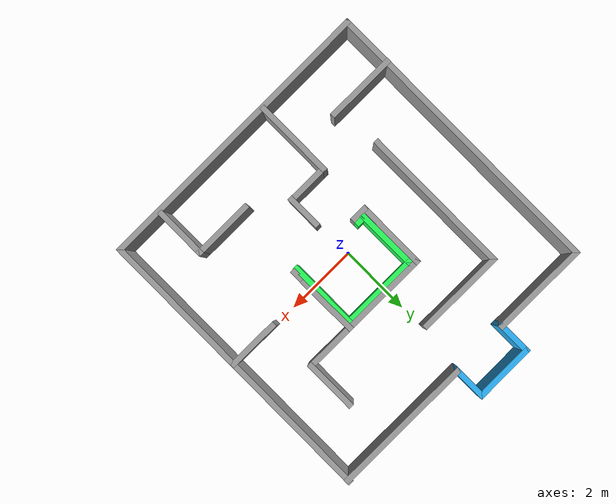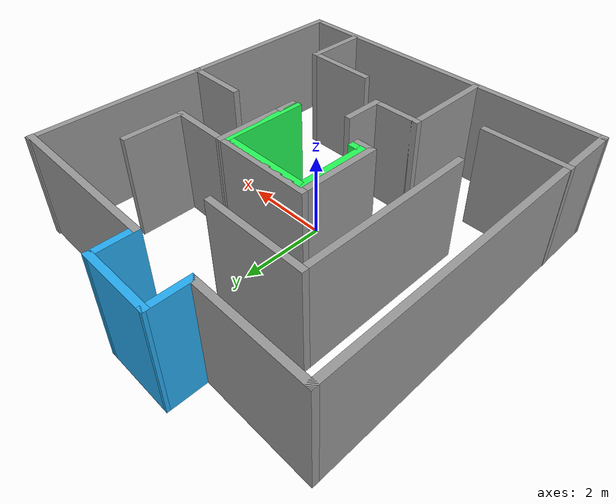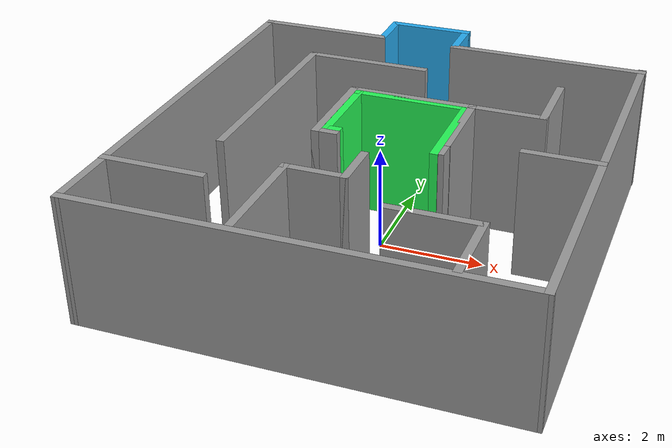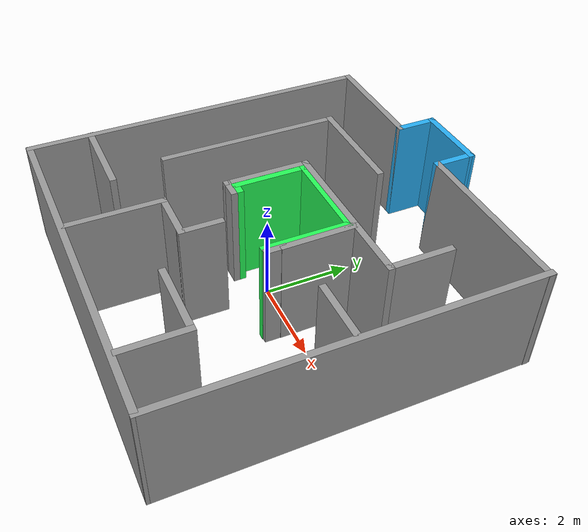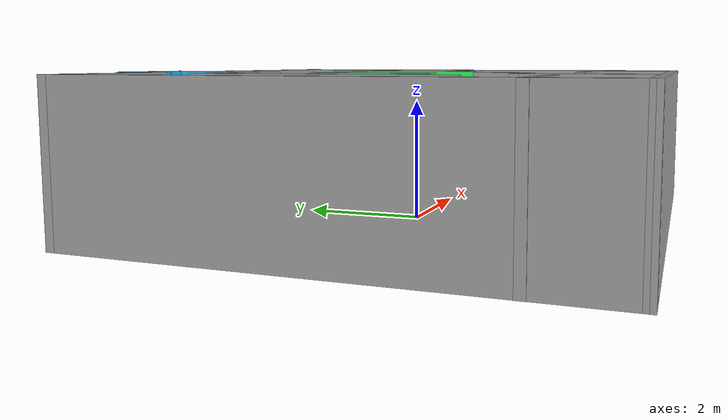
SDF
<?xml version='1.0'?>
<sdf version='1.7'>
  <model name='Floating_room_1'>
    <pose>-0.007582 0.398053 0 0 -0 0</pose>
    <link name='Wall_10'>
      <collision name='Wall_10_Collision'>
        <geometry>
          <box>
            <size>2.75 0.15 2.5</size>
          </box>
        </geometry>
        <pose>0 0 1.25 0 -0 0</pose>
      </collision>
      <visual name='Wall_10_Visual'>
        <pose>0 0 1.25 0 -0 0</pose>
        <geometry>
          <box>
            <size>2.75 0.15 2.5</size>
          </box>
        </geometry>
        <material>
          <script>
            <uri>file://media/materials/scripts/gazebo.material</uri>
            <name>Gazebo/Grey</name>
          </script>
          <ambient>1 1 1 1</ambient>
        </material>
        <meta>
          <layer>0</layer>
        </meta>
      </visual>
      <pose>-2.70767 3.61829 0 0 -0 0</pose>
    </link>
    <link name='Wall_11'>
      <collision name='Wall_11_Collision'>
        <geometry>
          <box>
            <size>1 0.15 2.5</size>
          </box>
        </geometry>
        <pose>0 0 1.25 0 -0 0</pose>
      </collision>
      <visual name='Wall_11_Visual'>
        <pose>0 0 1.25 0 -0 0</pose>
        <geometry>
          <box>
            <size>1 0.15 2.5</size>
          </box>
        </geometry>
        <material>
          <script>
            <uri>file://media/materials/scripts/gazebo.material</uri>
            <name>Gazebo/Grey</name>
          </script>
          <ambient>0.152941 0.67451 0.945098 1</ambient>
        </material>
        <meta>
          <layer>0</layer>
        </meta>
      </visual>
      <pose>-1.40767 4.04329 0 0 -0 1.5708</pose>
    </link>
    <link name='Wall_14'>
      <collision name='Wall_14_Collision'>
        <geometry>
          <box>
            <size>4 0.15 2.5</size>
          </box>
        </geometry>
        <pose>0 0 1.25 0 -0 0</pose>
      </collision>
      <visual name='Wall_14_Visual'>
        <pose>0 0 1.25 0 -0 0</pose>
        <geometry>
          <box>
            <size>4 0.15 2.5</size>
          </box>
        </geometry>
        <material>
          <script>
            <uri>file://media/materials/scripts/gazebo.material</uri>
            <name>Gazebo/Grey</name>
          </script>
          <ambient>1 1 1 1</ambient>
        </material>
        <meta>
          <layer>0</layer>
        </meta>
      </visual>
      <pose>2.09088 3.63151 0 0 -0 0</pose>
    </link>
    <link name='Wall_16'>
      <collision name='Wall_16_Collision'>
        <geometry>
          <box>
            <size>1.5 0.15 2.5</size>
          </box>
        </geometry>
        <pose>0 0 1.25 0 -0 0</pose>
      </collision>
      <visual name='Wall_16_Visual'>
        <pose>0 0 1.25 0 -0 0</pose>
        <geometry>
          <box>
            <size>1.5 0.15 2.5</size>
          </box>
        </geometry>
        <material>
          <script>
            <uri>file://media/materials/scripts/gazebo.material</uri>
            <name>Gazebo/Grey</name>
          </script>
          <ambient>1 1 1 1</ambient>
        </material>
        <meta>
          <layer>0</layer>
        </meta>
      </visual>
      <pose>2.66533 1.64931 0 0 -0 -1.5708</pose>
    </link>
    <link name='Wall_17'>
      <collision name='Wall_17_Collision'>
        <geometry>
          <box>
            <size>1.5 0.15 2.5</size>
          </box>
        </geometry>
        <pose>0 0 1.25 0 -0 0</pose>
      </collision>
      <visual name='Wall_17_Visual'>
        <pose>0 0 1.25 0 -0 0</pose>
        <geometry>
          <box>
            <size>1.5 0.15 2.5</size>
          </box>
        </geometry>
        <material>
          <script>
            <uri>file://media/materials/scripts/gazebo.material</uri>
            <name>Gazebo/Grey</name>
          </script>
          <ambient>1 1 1 1</ambient>
        </material>
        <meta>
          <layer>0</layer>
        </meta>
      </visual>
      <pose>1.99033 0.97431 0 0 -0 3.14159</pose>
    </link>
    <link name='Wall_18'>
      <collision name='Wall_18_Collision'>
        <geometry>
          <box>
            <size>1.75 0.15 2.5</size>
          </box>
        </geometry>
        <pose>0 0 1.25 0 -0 0</pose>
      </collision>
      <visual name='Wall_18_Visual'>
        <pose>0 0 1.25 0 -0 0</pose>
        <geometry>
          <box>
            <size>1.75 0.15 2.5</size>
          </box>
        </geometry>
        <material>
          <script>
            <uri>file://media/materials/scripts/gazebo.material</uri>
            <name>Gazebo/Grey</name>
          </script>
          <ambient>1 1 1 1</ambient>
        </material>
        <meta>
          <layer>0</layer>
        </meta>
      </visual>
      <pose>1.32289 0.17431 0 0 -0 -1.56134</pose>
    </link>
    <link name='Wall_20'>
      <collision name='Wall_20_Collision'>
        <geometry>
          <box>
            <size>2.5 0.15 2.5</size>
          </box>
        </geometry>
        <pose>0 0 1.25 0 -0 0</pose>
      </collision>
      <visual name='Wall_20_Visual'>
        <pose>0 0 1.25 0 -0 0</pose>
        <geometry>
          <box>
            <size>2.5 0.15 2.5</size>
          </box>
        </geometry>
        <material>
          <script>
            <uri>file://media/materials/scripts/gazebo.material</uri>
            <name>Gazebo/Grey</name>
          </script>
          <ambient>1 1 1 1</ambient>
        </material>
        <meta>
          <layer>0</layer>
        </meta>
      </visual>
      <pose>0.140328 0.97431 0 0 -0 3.14159</pose>
    </link>
    <link name='Wall_21'>
      <collision name='Wall_21_Collision'>
        <geometry>
          <box>
            <size>2 0.15 2.5</size>
          </box>
        </geometry>
        <pose>0 0 1.25 0 -0 0</pose>
      </collision>
      <visual name='Wall_21_Visual'>
        <pose>0 0 1.25 0 -0 0</pose>
        <geometry>
          <box>
            <size>2 0.15 2.5</size>
          </box>
        </geometry>
        <material>
          <script>
            <uri>file://media/materials/scripts/gazebo.material</uri>
            <name>Gazebo/Grey</name>
          </script>
          <ambient>1 1 1 1</ambient>
        </material>
        <meta>
          <layer>0</layer>
        </meta>
      </visual>
      <pose>-1.03467 0.04931 0 0 -0 -1.5708</pose>
    </link>
    <link name='Wall_22'>
      <collision name='Wall_22_Collision'>
        <geometry>
          <box>
            <size>0.5 0.15 2.5</size>
          </box>
        </geometry>
        <pose>0 0 1.25 0 -0 0</pose>
      </collision>
      <visual name='Wall_22_Visual'>
        <pose>0 0 1.25 0 -0 0</pose>
        <geometry>
          <box>
            <size>0.5 0.15 2.5</size>
          </box>
        </geometry>
        <material>
          <script>
            <uri>file://media/materials/scripts/gazebo.material</uri>
            <name>Gazebo/Grey</name>
          </script>
          <ambient>1 1 1 1</ambient>
        </material>
        <meta>
          <layer>0</layer>
        </meta>
      </visual>
      <pose>-0.859672 -0.87569 0 0 -0 0</pose>
    </link>
    <link name='Wall_24'>
      <collision name='Wall_24_Collision'>
        <geometry>
          <box>
            <size>1.5 0.15 2.5</size>
          </box>
        </geometry>
        <pose>0 0 1.25 0 -0 0</pose>
      </collision>
      <visual name='Wall_24_Visual'>
        <pose>0 0 1.25 0 -0 0</pose>
        <geometry>
          <box>
            <size>1.5 0.15 2.5</size>
          </box>
        </geometry>
        <material>
          <script>
            <uri>file://media/materials/scripts/gazebo.material</uri>
            <name>Gazebo/Grey</name>
          </script>
          <ambient>1 1 1 1</ambient>
        </material>
        <meta>
          <layer>0</layer>
        </meta>
      </visual>
      <pose>3.32284 -0.421629 0 0 -0 0</pose>
    </link>
    <link name='Wall_26'>
      <collision name='Wall_26_Collision'>
        <geometry>
          <box>
            <size>1.5 0.15 2.5</size>
          </box>
        </geometry>
        <pose>0 0 1.25 0 -0 0</pose>
      </collision>
      <visual name='Wall_26_Visual'>
        <pose>0 0 1.25 0 -0 0</pose>
        <geometry>
          <box>
            <size>1.5 0.15 2.5</size>
          </box>
        </geometry>
        <material>
          <script>
            <uri>file://media/materials/scripts/gazebo.material</uri>
            <name>Gazebo/Grey</name>
          </script>
          <ambient>1 1 1 1</ambient>
        </material>
        <meta>
          <layer>0</layer>
        </meta>
      </visual>
      <pose>2.64784 -3.66767 0 0 -0 -1.5708</pose>
    </link>
    <link name='Wall_28'>
      <collision name='Wall_28_Collision'>
        <geometry>
          <box>
            <size>1.75 0.15 2.5</size>
          </box>
        </geometry>
        <pose>0 0 1.25 0 -0 0</pose>
      </collision>
      <visual name='Wall_28_Visual'>
        <pose>0 0 1.25 0 -0 0</pose>
        <geometry>
          <box>
            <size>1.75 0.15 2.5</size>
          </box>
        </geometry>
        <material>
          <script>
            <uri>file://media/materials/scripts/gazebo.material</uri>
            <name>Gazebo/Grey</name>
          </script>
          <ambient>1 1 1 1</ambient>
        </material>
        <meta>
          <layer>0</layer>
        </meta>
      </visual>
      <pose>1.84784 -2.99267 0 0 -0 3.14159</pose>
    </link>
    <link name='Wall_31'>
      <collision name='Wall_31_Collision'>
        <geometry>
          <box>
            <size>2.25 0.15 2.5</size>
          </box>
        </geometry>
        <pose>0 0 1.25 0 -0 0</pose>
      </collision>
      <visual name='Wall_31_Visual'>
        <pose>0 0 1.25 0 -0 0</pose>
        <geometry>
          <box>
            <size>2.25 0.15 2.5</size>
          </box>
        </geometry>
        <material>
          <script>
            <uri>file://media/materials/scripts/gazebo.material</uri>
            <name>Gazebo/Grey</name>
          </script>
          <ambient>1 1 1 1</ambient>
        </material>
        <meta>
          <layer>0</layer>
        </meta>
      </visual>
      <pose>-1.00758 -3.35936 0 0 -0 1.5708</pose>
    </link>
    <link name='Wall_35'>
      <collision name='Wall_35_Collision'>
        <geometry>
          <box>
            <size>0.5 0.15 2.5</size>
          </box>
        </geometry>
        <pose>0 0 1.25 0 -0 0</pose>
      </collision>
      <visual name='Wall_35_Visual'>
        <pose>0 0 1.25 0 -0 0</pose>
        <geometry>
          <box>
            <size>0.5 0.15 2.5</size>
          </box>
        </geometry>
        <material>
          <script>
            <uri>file://media/materials/scripts/gazebo.material</uri>
            <name>Gazebo/Grey</name>
          </script>
          <ambient>1 1 1 1</ambient>
        </material>
        <meta>
          <layer>0</layer>
        </meta>
      </visual>
      <pose>1.32289 -0.80069 0 0 -0 -1.5708</pose>
    </link>
    <link name='Wall_38'>
      <collision name='Wall_38_Collision'>
        <geometry>
          <box>
            <size>2.5 0.15 2.5</size>
          </box>
        </geometry>
        <pose>0 0 1.25 0 -0 0</pose>
      </collision>
      <visual name='Wall_38_Visual'>
        <pose>0 0 1.25 0 -0 0</pose>
        <geometry>
          <box>
            <size>2.5 0.15 2.5</size>
          </box>
        </geometry>
        <material>
          <script>
            <uri>file://media/materials/scripts/gazebo.material</uri>
            <name>Gazebo/Grey</name>
          </script>
          <ambient>1 1 1 1</ambient>
        </material>
        <meta>
          <layer>0</layer>
        </meta>
      </visual>
      <pose>-1.25561 2.28933 0 0 -0 3.14159</pose>
    </link>
    <link name='Wall_39'>
      <collision name='Wall_39_Collision'>
        <geometry>
          <box>
            <size>4.25 0.15 2.5</size>
          </box>
        </geometry>
        <pose>0 0 1.25 0 -0 0</pose>
      </collision>
      <visual name='Wall_39_Visual'>
        <pose>0 0 1.25 0 -0 0</pose>
        <geometry>
          <box>
            <size>4.25 0.15 2.5</size>
          </box>
        </geometry>
        <material>
          <script>
            <uri>file://media/materials/scripts/gazebo.material</uri>
            <name>Gazebo/Grey</name>
          </script>
          <ambient>1 1 1 1</ambient>
        </material>
        <meta>
          <layer>0</layer>
        </meta>
      </visual>
      <pose>-2.43061 0.23933 0 0 -0 -1.5708</pose>
    </link>
    <link name='Wall_4'>
      <collision name='Wall_4_Collision'>
        <geometry>
          <box>
            <size>8.25 0.15 2.5</size>
          </box>
        </geometry>
        <pose>0 0 1.25 0 -0 0</pose>
      </collision>
      <visual name='Wall_4_Visual'>
        <pose>0 0 1.25 0 -0 0</pose>
        <geometry>
          <box>
            <size>8.25 0.15 2.5</size>
          </box>
        </geometry>
        <material>
          <script>
            <uri>file://media/materials/scripts/gazebo.material</uri>
            <name>Gazebo/Grey</name>
          </script>
          <ambient>1 1 1 1</ambient>
        </material>
        <meta>
          <layer>0</layer>
        </meta>
      </visual>
      <pose>4.00734 -0.386087 0 0 -0 -1.5708</pose>
    </link>
    <link name='Wall_41'>
      <collision name='Wall_41_Collision'>
        <geometry>
          <box>
            <size>2 0.15 2.5</size>
          </box>
        </geometry>
        <pose>0 0 1.25 0 -0 0</pose>
      </collision>
      <visual name='Wall_41_Visual'>
        <pose>0 0 1.25 0 -0 0</pose>
        <geometry>
          <box>
            <size>2 0.15 2.5</size>
          </box>
        </geometry>
        <material>
          <script>
            <uri>file://media/materials/scripts/gazebo.material</uri>
            <name>Gazebo/Grey</name>
          </script>
          <ambient>1 1 1 1</ambient>
        </material>
        <meta>
          <layer>0</layer>
        </meta>
      </visual>
      <pose>-3.09088 -3.08012 0 0 -0 0</pose>
    </link>
    <link name='Wall_43'>
      <collision name='Wall_43_Collision'>
        <geometry>
          <box>
            <size>1.75 0.15 2.5</size>
          </box>
        </geometry>
        <pose>0 0 1.25 0 -0 0</pose>
      </collision>
      <visual name='Wall_43_Visual'>
        <pose>0 0 1.25 0 -0 0</pose>
        <geometry>
          <box>
            <size>1.75 0.15 2.5</size>
          </box>
        </geometry>
        <material>
          <script>
            <uri>file://media/materials/scripts/gazebo.material</uri>
            <name>Gazebo/Grey</name>
          </script>
          <ambient>0.145098 0.976471 0.337255 1</ambient>
        </material>
        <meta>
          <layer>0</layer>
        </meta>
      </visual>
      <pose>-0.883268 0.055336 0 0 -0 -1.5708</pose>
    </link>
    <link name='Wall_47'>
      <collision name='Wall_47_Collision'>
        <geometry>
          <box>
            <size>0.25 0.15 2.5</size>
          </box>
        </geometry>
        <pose>0 0 1.25 0 -0 0</pose>
      </collision>
      <visual name='Wall_47_Visual'>
        <pose>0 0 1.25 0 -0 0</pose>
        <geometry>
          <box>
            <size>0.25 0.15 2.5</size>
          </box>
        </geometry>
        <material>
          <script>
            <uri>file://media/materials/scripts/gazebo.material</uri>
            <name>Gazebo/Grey</name>
          </script>
          <ambient>0.145098 0.976471 0.337255 1</ambient>
        </material>
        <meta>
          <layer>0</layer>
        </meta>
      </visual>
      <pose>-0.734955 -0.735094 0 0 -0 0</pose>
    </link>
    <link name='Wall_49'>
      <collision name='Wall_49_Collision'>
        <geometry>
          <box>
            <size>2.25 0.15 2.5</size>
          </box>
        </geometry>
        <pose>0 0 1.25 0 -0 0</pose>
      </collision>
      <visual name='Wall_49_Visual'>
        <pose>0 0 1.25 0 -0 0</pose>
        <geometry>
          <box>
            <size>2.25 0.15 2.5</size>
          </box>
        </geometry>
        <material>
          <script>
            <uri>file://media/materials/scripts/gazebo.material</uri>
            <name>Gazebo/Grey</name>
          </script>
          <ambient>0.145098 0.976471 0.337255 1</ambient>
        </material>
        <meta>
          <layer>0</layer>
        </meta>
      </visual>
      <pose>0.166732 0.855336 0 0 -0 0</pose>
    </link>
    <link name='Wall_51'>
      <collision name='Wall_51_Collision'>
        <geometry>
          <box>
            <size>2 0.15 2.5</size>
          </box>
        </geometry>
        <pose>0 0 1.25 0 -0 0</pose>
      </collision>
      <visual name='Wall_51_Visual'>
        <pose>0 0 1.25 0 -0 0</pose>
        <geometry>
          <box>
            <size>2 0.15 2.5</size>
          </box>
        </geometry>
        <material>
          <script>
            <uri>file://media/materials/scripts/gazebo.material</uri>
            <name>Gazebo/Grey</name>
          </script>
          <ambient>0.145098 0.976471 0.337255 1</ambient>
        </material>
        <meta>
          <layer>0</layer>
        </meta>
      </visual>
      <pose>1.21673 -0.069664 0 0 -0 -1.5708</pose>
    </link>
    <link name='Wall_53'>
      <collision name='Wall_53_Collision'>
        <geometry>
          <box>
            <size>1 0.15 2.5</size>
          </box>
        </geometry>
        <pose>0 0 1.25 0 -0 0</pose>
      </collision>
      <visual name='Wall_53_Visual'>
        <pose>0 0 1.25 0 -0 0</pose>
        <geometry>
          <box>
            <size>1 0.15 2.5</size>
          </box>
        </geometry>
        <material>
          <script>
            <uri>file://media/materials/scripts/gazebo.material</uri>
            <name>Gazebo/Grey</name>
          </script>
          <ambient>0.152941 0.67451 0.945098 1</ambient>
        </material>
        <meta>
          <layer>0</layer>
        </meta>
      </visual>
      <pose>0.165876 4.05651 0 0 -0 1.5708</pose>
    </link>
    <link name='Wall_54'>
      <collision name='Wall_54_Collision'>
        <geometry>
          <box>
            <size>1.72361 0.15 2.5</size>
          </box>
        </geometry>
        <pose>0 0 1.25 0 -0 0</pose>
      </collision>
      <visual name='Wall_54_Visual'>
        <pose>0 0 1.25 0 -0 0</pose>
        <geometry>
          <box>
            <size>1.72361 0.15 2.5</size>
          </box>
        </geometry>
        <material>
          <script>
            <uri>file://media/materials/scripts/gazebo.material</uri>
            <name>Gazebo/Grey</name>
          </script>
          <ambient>0.152941 0.67451 0.945098 1</ambient>
        </material>
        <meta>
          <layer>0</layer>
        </meta>
      </visual>
      <pose>-0.620899 4.4749 0 0 -0 -3.13319</pose>
    </link>
    <link name='Wall_56'>
      <collision name='Wall_56_Collision'>
        <geometry>
          <box>
            <size>1.25 0.15 2.5</size>
          </box>
        </geometry>
        <pose>0 0 1.25 0 -0 0</pose>
      </collision>
      <visual name='Wall_56_Visual'>
        <pose>0 0 1.25 0 -0 0</pose>
        <geometry>
          <box>
            <size>1.25 0.15 2.5</size>
          </box>
        </geometry>
        <material>
          <script>
            <uri>file://media/materials/scripts/gazebo.material</uri>
            <name>Gazebo/Grey</name>
          </script>
          <ambient>1 1 1 1</ambient>
        </material>
        <meta>
          <layer>0</layer>
        </meta>
      </visual>
      <pose>-0.457585 -2.30936 0 0 -0 0</pose>
    </link>
    <link name='Wall_57'>
      <collision name='Wall_57_Collision'>
        <geometry>
          <box>
            <size>1 0.15 2.5</size>
          </box>
        </geometry>
        <pose>0 0 1.25 0 -0 0</pose>
      </collision>
      <visual name='Wall_57_Visual'>
        <pose>0 0 1.25 0 -0 0</pose>
        <geometry>
          <box>
            <size>1 0.15 2.5</size>
          </box>
        </geometry>
        <material>
          <script>
            <uri>file://media/materials/scripts/gazebo.material</uri>
            <name>Gazebo/Grey</name>
          </script>
          <ambient>1 1 1 1</ambient>
        </material>
        <meta>
          <layer>0</layer>
        </meta>
      </visual>
      <pose>0.092415 -1.88436 0 0 -0 1.5708</pose>
    </link>
    <link name='Wall_6'>
      <collision name='Wall_6_Collision'>
        <geometry>
          <box>
            <size>8.25 0.15 2.5</size>
          </box>
        </geometry>
        <pose>0 0 1.25 0 -0 0</pose>
      </collision>
      <visual name='Wall_6_Visual'>
        <pose>0 0 1.25 0 -0 0</pose>
        <geometry>
          <box>
            <size>8.25 0.15 2.5</size>
          </box>
        </geometry>
        <material>
          <script>
            <uri>file://media/materials/scripts/gazebo.material</uri>
            <name>Gazebo/Grey</name>
          </script>
          <ambient>1 1 1 1</ambient>
        </material>
        <meta>
          <layer>0</layer>
        </meta>
      </visual>
      <pose>-4.00767 -0.431713 0 0 -0 -1.5708</pose>
    </link>
    <link name='Wall_8'>
      <collision name='Wall_8_Collision'>
        <geometry>
          <box>
            <size>8.16514 0.15 2.5</size>
          </box>
        </geometry>
        <pose>0 0 1.25 0 -0 0</pose>
      </collision>
      <visual name='Wall_8_Visual'>
        <pose>0 0 1.25 0 -0 0</pose>
        <geometry>
          <box>
            <size>8.16514 0.15 2.5</size>
          </box>
        </geometry>
        <material>
          <script>
            <uri>file://media/materials/scripts/gazebo.material</uri>
            <name>Gazebo/Grey</name>
          </script>
          <ambient>1 1 1 1</ambient>
        </material>
        <meta>
          <layer>0</layer>
        </meta>
      </visual>
      <pose>-0.000168 -4.4589 0 0 -0 0.005693</pose>
    </link>
    <static>1</static>
  </model>
</sdf>
